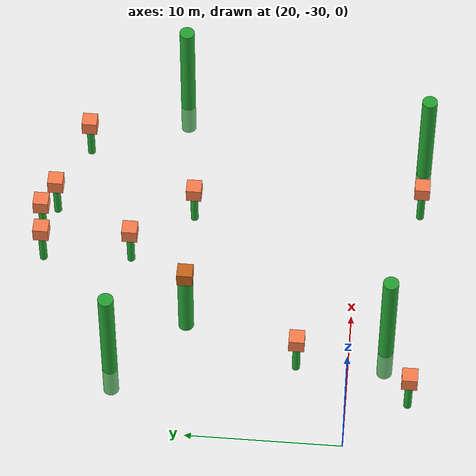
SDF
<sdf version="1.7">
 <world name="default">
  <model name="ground_plane">
   <static>1</static>
   <link name="link">
    <collision name="collision">
     <geometry><plane><normal>0 0 1</normal><size>100 100</size></plane></geometry>
     <surface>
      <contact><collide_bitmask>65535</collide_bitmask></contact>
      <friction><ode><mu>100</mu><mu2>50</mu2></ode></friction>
     </surface>
    </collision>
    <visual name="visual">
     <cast_shadows>0</cast_shadows>
     <geometry><plane><normal>0 0 1</normal><size>100 100</size></plane></geometry>
     <material>
      <script><uri>file://media/materials/scripts/gazebo.material</uri><name>Gazebo/Grey</name></script>
     </material>
    </visual>
   </link>
  </model>
  <model name="unit_cylinder_green_2_clone_clone_20">
   <link name="link">
    <inertial>
     <mass>1</mass>
     <inertia><ixx>0.145833</ixx><ixy>0</ixy><ixz>0</ixz><iyy>0.145833</iyy><iyz>0</iyz><izz>0.125</izz></inertia>
    </inertial>
    <visual name="visual">
     <geometry><cylinder><radius>0.5</radius><length>10</length></cylinder></geometry>
     <material>
      <script><name>Gazebo/Green</name><uri>file://media/materials/scripts/gazebo.material</uri></script>
      <shader type="pixel"><normal_map>__default__</normal_map></shader>
      <ambient>0 1 0.3 1</ambient>
      <diffuse>0.7 0.7 0.7 1</diffuse>
      <specular>0.01 0.01 0.01 1</specular>
      <emissive>0 0 0 1</emissive>
     </material>
    </visual>
    <collision name="collision">
     <geometry><cylinder><radius>0.5</radius><length>5</length></cylinder></geometry>
     <surface>
      <friction>
       <ode><mu>1</mu><mu2>1</mu2><fdir1>0 0 0</fdir1><slip1>0</slip1><slip2>0</slip2></ode>
       <torsional>
        <coefficient>1</coefficient>
        <patch_radius>0</patch_radius>
        <surface_radius>0</surface_radius>
        <use_patch_radius>1</use_patch_radius>
        <ode><slip>0</slip></ode>
       </torsional>
      </friction>
      <bounce><restitution_coefficient>0</restitution_coefficient><threshold>1e+06</threshold></bounce>
      <contact>
       <collide_without_contact>0</collide_without_contact>
       <collide_without_contact_bitmask>1</collide_without_contact_bitmask>
       <collide_bitmask>1</collide_bitmask>
       <ode>
        <soft_cfm>0</soft_cfm>
        <soft_erp>0.2</soft_erp>
        <kp>1e+13</kp>
        <kd>1</kd>
        <max_vel>0.01</max_vel>
        <min_depth>0</min_depth>
       </ode>
       <bullet>
        <split_impulse>1</split_impulse>
        <split_impulse_penetration_threshold>-0.01</split_impulse_penetration_threshold>
        <soft_cfm>0</soft_cfm>
        <soft_erp>0.2</soft_erp>
        <kp>1e+13</kp>
        <kd>1</kd>
       </bullet>
      </contact>
     </surface>
    </collision>
   </link>
   <static>1</static>
   <pose>24.7504 -14.7528 2.5 0 0 -0.000967</pose>
  </model>
  <model name="unit_cylinder_green_2_clone_clone_17_clone">
   <link name="link">
    <inertial>
     <mass>1</mass>
     <inertia><ixx>0.145833</ixx><ixy>0</ixy><ixz>0</ixz><iyy>0.145833</iyy><iyz>0</iyz><izz>0.125</izz></inertia>
    </inertial>
    <visual name="visual">
     <geometry><cylinder><radius>0.5</radius><length>10</length></cylinder></geometry>
     <material>
      <script><name>Gazebo/Green</name><uri>file://media/materials/scripts/gazebo.material</uri></script>
      <shader type="pixel"><normal_map>__default__</normal_map></shader>
      <ambient>0 1 0.3 1</ambient>
      <diffuse>0.7 0.7 0.7 1</diffuse>
      <specular>0.01 0.01 0.01 1</specular>
      <emissive>0 0 0 1</emissive>
     </material>
    </visual>
    <collision name="collision">
     <geometry><cylinder><radius>0.5</radius><length>5</length></cylinder></geometry>
     <surface>
      <friction>
       <ode><mu>1</mu><mu2>1</mu2><fdir1>0 0 0</fdir1><slip1>0</slip1><slip2>0</slip2></ode>
       <torsional>
        <coefficient>1</coefficient>
        <patch_radius>0</patch_radius>
        <surface_radius>0</surface_radius>
        <use_patch_radius>1</use_patch_radius>
        <ode><slip>0</slip></ode>
       </torsional>
      </friction>
      <bounce><restitution_coefficient>0</restitution_coefficient><threshold>1e+06</threshold></bounce>
      <contact>
       <collide_without_contact>0</collide_without_contact>
       <collide_without_contact_bitmask>1</collide_without_contact_bitmask>
       <collide_bitmask>1</collide_bitmask>
       <ode>
        <soft_cfm>0</soft_cfm>
        <soft_erp>0.2</soft_erp>
        <kp>1e+13</kp>
        <kd>1</kd>
        <max_vel>0.01</max_vel>
        <min_depth>0</min_depth>
       </ode>
       <bullet>
        <split_impulse>1</split_impulse>
        <split_impulse_penetration_threshold>-0.01</split_impulse_penetration_threshold>
        <soft_cfm>0</soft_cfm>
        <soft_erp>0.2</soft_erp>
        <kp>1e+13</kp>
        <kd>1</kd>
       </bullet>
      </contact>
     </surface>
    </collision>
   </link>
   <static>1</static>
   <pose>42.3584 -34.1999 2.5 1e-06 -0 -0.000967</pose>
  </model>
  <model name="unit_cylinder_green_2_clone_clone_17_clone_0">
   <link name="link">
    <inertial>
     <mass>1</mass>
     <inertia><ixx>0.145833</ixx><ixy>0</ixy><ixz>0</ixz><iyy>0.145833</iyy><iyz>0</iyz><izz>0.125</izz></inertia>
    </inertial>
    <visual name="visual">
     <geometry><cylinder><radius>0.5</radius><length>10</length></cylinder></geometry>
     <material>
      <script><name>Gazebo/Green</name><uri>file://media/materials/scripts/gazebo.material</uri></script>
      <shader type="pixel"><normal_map>__default__</normal_map></shader>
      <ambient>0 1 0.3 1</ambient>
      <diffuse>0.7 0.7 0.7 1</diffuse>
      <specular>0.01 0.01 0.01 1</specular>
      <emissive>0 0 0 1</emissive>
     </material>
    </visual>
    <collision name="collision">
     <geometry><cylinder><radius>0.5</radius><length>5</length></cylinder></geometry>
     <surface>
      <friction>
       <ode><mu>1</mu><mu2>1</mu2><fdir1>0 0 0</fdir1><slip1>0</slip1><slip2>0</slip2></ode>
       <torsional>
        <coefficient>1</coefficient>
        <patch_radius>0</patch_radius>
        <surface_radius>0</surface_radius>
        <use_patch_radius>1</use_patch_radius>
        <ode><slip>0</slip></ode>
       </torsional>
      </friction>
      <bounce><restitution_coefficient>0</restitution_coefficient><threshold>1e+06</threshold></bounce>
      <contact>
       <collide_without_contact>0</collide_without_contact>
       <collide_without_contact_bitmask>1</collide_without_contact_bitmask>
       <collide_bitmask>1</collide_bitmask>
       <ode>
        <soft_cfm>0</soft_cfm>
        <soft_erp>0.2</soft_erp>
        <kp>1e+13</kp>
        <kd>1</kd>
        <max_vel>0.01</max_vel>
        <min_depth>0</min_depth>
       </ode>
       <bullet>
        <split_impulse>1</split_impulse>
        <split_impulse_penetration_threshold>-0.01</split_impulse_penetration_threshold>
        <soft_cfm>0</soft_cfm>
        <soft_erp>0.2</soft_erp>
        <kp>1e+13</kp>
        <kd>1</kd>
       </bullet>
      </contact>
     </surface>
    </collision>
   </link>
   <static>1</static>
   <pose>47.0102 -17.7298 2.5 1e-06 -0 -0.000967</pose>
  </model>
  <model name="unit_cylinder_green_2_clone_clone_17_clone_3">
   <link name="link">
    <inertial>
     <mass>1</mass>
     <inertia><ixx>0.145833</ixx><ixy>0</ixy><ixz>0</ixz><iyy>0.145833</iyy><iyz>0</iyz><izz>0.125</izz></inertia>
    </inertial>
    <visual name="visual">
     <geometry><cylinder><radius>0.5</radius><length>10</length></cylinder></geometry>
     <material>
      <script><name>Gazebo/Green</name><uri>file://media/materials/scripts/gazebo.material</uri></script>
      <shader type="pixel"><normal_map>__default__</normal_map></shader>
      <ambient>0 1 0.3 1</ambient>
      <diffuse>0.7 0.7 0.7 1</diffuse>
      <specular>0.01 0.01 0.01 1</specular>
      <emissive>0 0 0 1</emissive>
     </material>
    </visual>
    <collision name="collision">
     <geometry><cylinder><radius>0.5</radius><length>5</length></cylinder></geometry>
     <surface>
      <friction>
       <ode><mu>1</mu><mu2>1</mu2><fdir1>0 0 0</fdir1><slip1>0</slip1><slip2>0</slip2></ode>
       <torsional>
        <coefficient>1</coefficient>
        <patch_radius>0</patch_radius>
        <surface_radius>0</surface_radius>
        <use_patch_radius>1</use_patch_radius>
        <ode><slip>0</slip></ode>
       </torsional>
      </friction>
      <bounce><restitution_coefficient>0</restitution_coefficient><threshold>1e+06</threshold></bounce>
      <contact>
       <collide_without_contact>0</collide_without_contact>
       <collide_without_contact_bitmask>1</collide_without_contact_bitmask>
       <collide_bitmask>1</collide_bitmask>
       <ode>
        <soft_cfm>0</soft_cfm>
        <soft_erp>0.2</soft_erp>
        <kp>1e+13</kp>
        <kd>1</kd>
        <max_vel>0.01</max_vel>
        <min_depth>0</min_depth>
       </ode>
       <bullet>
        <split_impulse>1</split_impulse>
        <split_impulse_penetration_threshold>-0.01</split_impulse_penetration_threshold>
        <soft_cfm>0</soft_cfm>
        <soft_erp>0.2</soft_erp>
        <kp>1e+13</kp>
        <kd>1</kd>
       </bullet>
      </contact>
     </surface>
    </collision>
   </link>
   <static>1</static>
   <pose>27.4984 -32.3703 2.5 1e-06 -0 -0.000967</pose>
  </model>
  <model name="unit_cylinder_green_2_clone_clone_3_clone_0_clone_0_clone_10">
   <link name="link">
    <inertial>
     <mass>1</mass>
     <inertia><ixx>0.145833</ixx><ixy>0</ixy><ixz>0</ixz><iyy>0.145833</iyy><iyz>0</iyz><izz>0.125</izz></inertia>
    </inertial>
    <visual name="visual">
     <geometry><cylinder><radius>0.5</radius><length>5</length></cylinder></geometry>
     <material>
      <script><name>Gazebo/Green</name><uri>file://media/materials/scripts/gazebo.material</uri></script>
      <shader type="pixel"><normal_map>__default__</normal_map></shader>
      <ambient>0 1 0.3 1</ambient>
      <diffuse>0.7 0.7 0.7 1</diffuse>
      <specular>0.01 0.01 0.01 1</specular>
      <emissive>0 0 0 1</emissive>
     </material>
    </visual>
    <collision name="collision">
     <geometry><cylinder><radius>0.5</radius><length>5</length></cylinder></geometry>
     <surface>
      <friction>
       <ode><mu>1</mu><mu2>1</mu2><fdir1>0 0 0</fdir1><slip1>0</slip1><slip2>0</slip2></ode>
       <torsional>
        <coefficient>1</coefficient>
        <patch_radius>0</patch_radius>
        <surface_radius>0</surface_radius>
        <use_patch_radius>1</use_patch_radius>
        <ode><slip>0</slip></ode>
       </torsional>
      </friction>
      <bounce><restitution_coefficient>0</restitution_coefficient><threshold>1e+06</threshold></bounce>
      <contact>
       <collide_without_contact>0</collide_without_contact>
       <collide_without_contact_bitmask>1</collide_without_contact_bitmask>
       <collide_bitmask>1</collide_bitmask>
       <ode>
        <soft_cfm>0</soft_cfm>
        <soft_erp>0.2</soft_erp>
        <kp>1e+13</kp>
        <kd>1</kd>
        <max_vel>0.01</max_vel>
        <min_depth>0</min_depth>
       </ode>
       <bullet>
        <split_impulse>1</split_impulse>
        <split_impulse_penetration_threshold>-0.01</split_impulse_penetration_threshold>
        <soft_cfm>0</soft_cfm>
        <soft_erp>0.2</soft_erp>
        <kp>1e+13</kp>
        <kd>1</kd>
       </bullet>
      </contact>
     </surface>
    </collision>
   </link>
   <link name="link_3">
    <inertial>
     <mass>1</mass>
     <inertia>
      <ixx>0.166667</ixx>
      <ixy>0</ixy>
      <ixz>0</ixz>
      <iyy>0.166667</iyy>
      <iyz>0</iyz>
      <izz>0.166667</izz>
     </inertia>
    </inertial>
    <pose>0 0 3 0 -0 0.000935</pose>
    <visual name="visual">
     <geometry><box><size>1 1 1</size></box></geometry>
     <material>
      <lighting>1</lighting>
      <script><uri>file://media/materials/scripts/gazebo.material</uri><name>Gazebo/Grey</name></script>
      <shader type="pixel"><normal_map>__default__</normal_map></shader>
      <ambient>0.8 0.4 0.1 1</ambient>
      <diffuse>0.7 0.7 0.7 1</diffuse>
      <specular>0.01 0.01 0.01 1</specular>
      <emissive>0 0 0 1</emissive>
     </material>
    </visual>
    <collision name="collision">
     <geometry><box><size>1 1 1</size></box></geometry>
     <surface>
      <friction>
       <ode><mu>1</mu><mu2>1</mu2><fdir1>0 0 0</fdir1><slip1>0</slip1><slip2>0</slip2></ode>
       <torsional>
        <coefficient>1</coefficient>
        <patch_radius>0</patch_radius>
        <surface_radius>0</surface_radius>
        <use_patch_radius>1</use_patch_radius>
        <ode><slip>0</slip></ode>
       </torsional>
      </friction>
      <bounce><restitution_coefficient>0</restitution_coefficient><threshold>1e+06</threshold></bounce>
      <contact>
       <collide_without_contact>0</collide_without_contact>
       <collide_without_contact_bitmask>1</collide_without_contact_bitmask>
       <collide_bitmask>1</collide_bitmask>
       <ode>
        <soft_cfm>0</soft_cfm>
        <soft_erp>0.2</soft_erp>
        <kp>1e+13</kp>
        <kd>1</kd>
        <max_vel>0.01</max_vel>
        <min_depth>0</min_depth>
       </ode>
       <bullet>
        <split_impulse>1</split_impulse>
        <split_impulse_penetration_threshold>-0.01</split_impulse_penetration_threshold>
        <soft_cfm>0</soft_cfm>
        <soft_erp>0.2</soft_erp>
        <kp>1e+13</kp>
        <kd>1</kd>
       </bullet>
      </contact>
     </surface>
    </collision>
   </link>
   <static>1</static>
   <pose>28.5058 -19.3294 2.49999 0 0 -0.000935</pose>
  </model>
  <model name="unit_cylinder_green_2_clone_clone_3_clone_0_clone_0_clone_60">
   <link name="link">
    <inertial>
     <mass>1</mass>
     <inertia><ixx>0.145833</ixx><ixy>0</ixy><ixz>0</ixz><iyy>0.145833</iyy><iyz>0</iyz><izz>0.125</izz></inertia>
    </inertial>
    <pose>0 0 -1.25 0 -0 0</pose>
    <visual name="visual">
     <geometry><cylinder><radius>0.25</radius><length>2.5</length></cylinder></geometry>
     <material>
      <script><name>Gazebo/Green</name><uri>file://media/materials/scripts/gazebo.material</uri></script>
      <shader type="pixel"><normal_map>__default__</normal_map></shader>
      <ambient>0 1 0.3 1</ambient>
      <diffuse>0.7 0.7 0.7 1</diffuse>
      <specular>0.01 0.01 0.01 1</specular>
      <emissive>0 0 0 1</emissive>
     </material>
    </visual>
    <collision name="collision">
     <geometry><cylinder><radius>0.5</radius><length>5</length></cylinder></geometry>
     <surface>
      <friction>
       <ode><mu>1</mu><mu2>1</mu2><fdir1>0 0 0</fdir1><slip1>0</slip1><slip2>0</slip2></ode>
       <torsional>
        <coefficient>1</coefficient>
        <patch_radius>0</patch_radius>
        <surface_radius>0</surface_radius>
        <use_patch_radius>1</use_patch_radius>
        <ode><slip>0</slip></ode>
       </torsional>
      </friction>
      <bounce><restitution_coefficient>0</restitution_coefficient><threshold>1e+06</threshold></bounce>
      <contact>
       <collide_without_contact>0</collide_without_contact>
       <collide_without_contact_bitmask>1</collide_without_contact_bitmask>
       <collide_bitmask>1</collide_bitmask>
       <ode>
        <soft_cfm>0</soft_cfm>
        <soft_erp>0.2</soft_erp>
        <kp>1e+13</kp>
        <kd>1</kd>
        <max_vel>0.01</max_vel>
        <min_depth>0</min_depth>
       </ode>
       <bullet>
        <split_impulse>1</split_impulse>
        <split_impulse_penetration_threshold>-0.01</split_impulse_penetration_threshold>
        <soft_cfm>0</soft_cfm>
        <soft_erp>0.2</soft_erp>
        <kp>1e+13</kp>
        <kd>1</kd>
       </bullet>
      </contact>
     </surface>
    </collision>
   </link>
   <link name="link_3">
    <inertial>
     <mass>1</mass>
     <inertia>
      <ixx>0.166667</ixx>
      <ixy>0</ixy>
      <ixz>0</ixz>
      <iyy>0.166667</iyy>
      <iyz>0</iyz>
      <izz>0.166667</izz>
     </inertia>
    </inertial>
    <pose>0 0 0.5 0 -0 0.000935</pose>
    <visual name="visual">
     <geometry><box><size>1 1 1</size></box></geometry>
     <material>
      <lighting>1</lighting>
      <script><uri>file://media/materials/scripts/gazebo.material</uri><name>Gazebo/Grey</name></script>
      <shader type="pixel"><normal_map>__default__</normal_map></shader>
      <ambient>1 0.5 0.3 1</ambient>
      <diffuse>0.7 0.7 0.7 1</diffuse>
      <specular>0.01 0.01 0.01 1</specular>
      <emissive>0 0 0 1</emissive>
     </material>
    </visual>
    <collision name="collision">
     <geometry><box><size>1 1 1</size></box></geometry>
     <surface>
      <friction>
       <ode><mu>1</mu><mu2>1</mu2><fdir1>0 0 0</fdir1><slip1>0</slip1><slip2>0</slip2></ode>
       <torsional>
        <coefficient>1</coefficient>
        <patch_radius>0</patch_radius>
        <surface_radius>0</surface_radius>
        <use_patch_radius>1</use_patch_radius>
        <ode><slip>0</slip></ode>
       </torsional>
      </friction>
      <bounce><restitution_coefficient>0</restitution_coefficient><threshold>1e+06</threshold></bounce>
      <contact>
       <collide_without_contact>0</collide_without_contact>
       <collide_without_contact_bitmask>1</collide_without_contact_bitmask>
       <collide_bitmask>1</collide_bitmask>
       <ode>
        <soft_cfm>0</soft_cfm>
        <soft_erp>0.2</soft_erp>
        <kp>1e+13</kp>
        <kd>1</kd>
        <max_vel>0.01</max_vel>
        <min_depth>0</min_depth>
       </ode>
       <bullet>
        <split_impulse>1</split_impulse>
        <split_impulse_penetration_threshold>-0.01</split_impulse_penetration_threshold>
        <soft_cfm>0</soft_cfm>
        <soft_erp>0.2</soft_erp>
        <kp>1e+13</kp>
        <kd>1</kd>
       </bullet>
      </contact>
     </surface>
    </collision>
   </link>
   <static>1</static>
   <pose>33.5032 -15.1973 2.49999 0 0 -0.000935</pose>
  </model>
  <model name="unit_cylinder_green_2_clone_clone_3_clone_0_clone_0_clone_61">
   <link name="link">
    <inertial>
     <mass>1</mass>
     <inertia><ixx>0.145833</ixx><ixy>0</ixy><ixz>0</ixz><iyy>0.145833</iyy><iyz>0</iyz><izz>0.125</izz></inertia>
    </inertial>
    <pose>0 0 -1.25 0 -0 0</pose>
    <visual name="visual">
     <geometry><cylinder><radius>0.25</radius><length>2.5</length></cylinder></geometry>
     <material>
      <script><name>Gazebo/Green</name><uri>file://media/materials/scripts/gazebo.material</uri></script>
      <shader type="pixel"><normal_map>__default__</normal_map></shader>
      <ambient>0 1 0.3 1</ambient>
      <diffuse>0.7 0.7 0.7 1</diffuse>
      <specular>0.01 0.01 0.01 1</specular>
      <emissive>0 0 0 1</emissive>
     </material>
    </visual>
    <collision name="collision">
     <geometry><cylinder><radius>0.5</radius><length>5</length></cylinder></geometry>
     <surface>
      <friction>
       <ode><mu>1</mu><mu2>1</mu2><fdir1>0 0 0</fdir1><slip1>0</slip1><slip2>0</slip2></ode>
       <torsional>
        <coefficient>1</coefficient>
        <patch_radius>0</patch_radius>
        <surface_radius>0</surface_radius>
        <use_patch_radius>1</use_patch_radius>
        <ode><slip>0</slip></ode>
       </torsional>
      </friction>
      <bounce><restitution_coefficient>0</restitution_coefficient><threshold>1e+06</threshold></bounce>
      <contact>
       <collide_without_contact>0</collide_without_contact>
       <collide_without_contact_bitmask>1</collide_without_contact_bitmask>
       <collide_bitmask>1</collide_bitmask>
       <ode>
        <soft_cfm>0</soft_cfm>
        <soft_erp>0.2</soft_erp>
        <kp>1e+13</kp>
        <kd>1</kd>
        <max_vel>0.01</max_vel>
        <min_depth>0</min_depth>
       </ode>
       <bullet>
        <split_impulse>1</split_impulse>
        <split_impulse_penetration_threshold>-0.01</split_impulse_penetration_threshold>
        <soft_cfm>0</soft_cfm>
        <soft_erp>0.2</soft_erp>
        <kp>1e+13</kp>
        <kd>1</kd>
       </bullet>
      </contact>
     </surface>
    </collision>
   </link>
   <link name="link_3">
    <inertial>
     <mass>1</mass>
     <inertia>
      <ixx>0.166667</ixx>
      <ixy>0</ixy>
      <ixz>0</ixz>
      <iyy>0.166667</iyy>
      <iyz>0</iyz>
      <izz>0.166667</izz>
     </inertia>
    </inertial>
    <pose>0 0 0.5 0 -0 0.000935</pose>
    <visual name="visual">
     <geometry><box><size>1 1 1</size></box></geometry>
     <material>
      <lighting>1</lighting>
      <script><uri>file://media/materials/scripts/gazebo.material</uri><name>Gazebo/Grey</name></script>
      <shader type="pixel"><normal_map>__default__</normal_map></shader>
      <ambient>1 0.5 0.3 1</ambient>
      <diffuse>0.7 0.7 0.7 1</diffuse>
      <specular>0.01 0.01 0.01 1</specular>
      <emissive>0 0 0 1</emissive>
     </material>
    </visual>
    <collision name="collision">
     <geometry><box><size>1 1 1</size></box></geometry>
     <surface>
      <friction>
       <ode><mu>1</mu><mu2>1</mu2><fdir1>0 0 0</fdir1><slip1>0</slip1><slip2>0</slip2></ode>
       <torsional>
        <coefficient>1</coefficient>
        <patch_radius>0</patch_radius>
        <surface_radius>0</surface_radius>
        <use_patch_radius>1</use_patch_radius>
        <ode><slip>0</slip></ode>
       </torsional>
      </friction>
      <bounce><restitution_coefficient>0</restitution_coefficient><threshold>1e+06</threshold></bounce>
      <contact>
       <collide_without_contact>0</collide_without_contact>
       <collide_without_contact_bitmask>1</collide_without_contact_bitmask>
       <collide_bitmask>1</collide_bitmask>
       <ode>
        <soft_cfm>0</soft_cfm>
        <soft_erp>0.2</soft_erp>
        <kp>1e+13</kp>
        <kd>1</kd>
        <max_vel>0.01</max_vel>
        <min_depth>0</min_depth>
       </ode>
       <bullet>
        <split_impulse>1</split_impulse>
        <split_impulse_penetration_threshold>-0.01</split_impulse_penetration_threshold>
        <soft_cfm>0</soft_cfm>
        <soft_erp>0.2</soft_erp>
        <kp>1e+13</kp>
        <kd>1</kd>
       </bullet>
      </contact>
     </surface>
    </collision>
   </link>
   <static>1</static>
   <pose>35.3508 -9.12911 2.49999 0 0 -0.000935</pose>
  </model>
  <model name="unit_cylinder_green_2_clone_clone_3_clone_0_clone_0_clone_68">
   <link name="link">
    <inertial>
     <mass>1</mass>
     <inertia><ixx>0.145833</ixx><ixy>0</ixy><ixz>0</ixz><iyy>0.145833</iyy><iyz>0</iyz><izz>0.125</izz></inertia>
    </inertial>
    <pose>0 0 -1.25 0 -0 0</pose>
    <visual name="visual">
     <geometry><cylinder><radius>0.25</radius><length>2.5</length></cylinder></geometry>
     <material>
      <script><name>Gazebo/Green</name><uri>file://media/materials/scripts/gazebo.material</uri></script>
      <shader type="pixel"><normal_map>__default__</normal_map></shader>
      <ambient>0 1 0.3 1</ambient>
      <diffuse>0.7 0.7 0.7 1</diffuse>
      <specular>0.01 0.01 0.01 1</specular>
      <emissive>0 0 0 1</emissive>
     </material>
    </visual>
    <collision name="collision">
     <geometry><cylinder><radius>0.5</radius><length>5</length></cylinder></geometry>
     <surface>
      <friction>
       <ode><mu>1</mu><mu2>1</mu2><fdir1>0 0 0</fdir1><slip1>0</slip1><slip2>0</slip2></ode>
       <torsional>
        <coefficient>1</coefficient>
        <patch_radius>0</patch_radius>
        <surface_radius>0</surface_radius>
        <use_patch_radius>1</use_patch_radius>
        <ode><slip>0</slip></ode>
       </torsional>
      </friction>
      <bounce><restitution_coefficient>0</restitution_coefficient><threshold>1e+06</threshold></bounce>
      <contact>
       <collide_without_contact>0</collide_without_contact>
       <collide_without_contact_bitmask>1</collide_without_contact_bitmask>
       <collide_bitmask>1</collide_bitmask>
       <ode>
        <soft_cfm>0</soft_cfm>
        <soft_erp>0.2</soft_erp>
        <kp>1e+13</kp>
        <kd>1</kd>
        <max_vel>0.01</max_vel>
        <min_depth>0</min_depth>
       </ode>
       <bullet>
        <split_impulse>1</split_impulse>
        <split_impulse_penetration_threshold>-0.01</split_impulse_penetration_threshold>
        <soft_cfm>0</soft_cfm>
        <soft_erp>0.2</soft_erp>
        <kp>1e+13</kp>
        <kd>1</kd>
       </bullet>
      </contact>
     </surface>
    </collision>
   </link>
   <link name="link_3">
    <inertial>
     <mass>1</mass>
     <inertia>
      <ixx>0.166667</ixx>
      <ixy>0</ixy>
      <ixz>0</ixz>
      <iyy>0.166667</iyy>
      <iyz>0</iyz>
      <izz>0.166667</izz>
     </inertia>
    </inertial>
    <pose>0 0 0.5 0 -0 0.000935</pose>
    <visual name="visual">
     <geometry><box><size>1 1 1</size></box></geometry>
     <material>
      <lighting>1</lighting>
      <script><uri>file://media/materials/scripts/gazebo.material</uri><name>Gazebo/Grey</name></script>
      <shader type="pixel"><normal_map>__default__</normal_map></shader>
      <ambient>1 0.5 0.3 1</ambient>
      <diffuse>0.7 0.7 0.7 1</diffuse>
      <specular>0.01 0.01 0.01 1</specular>
      <emissive>0 0 0 1</emissive>
     </material>
    </visual>
    <collision name="collision">
     <geometry><box><size>1 1 1</size></box></geometry>
     <surface>
      <friction>
       <ode><mu>1</mu><mu2>1</mu2><fdir1>0 0 0</fdir1><slip1>0</slip1><slip2>0</slip2></ode>
       <torsional>
        <coefficient>1</coefficient>
        <patch_radius>0</patch_radius>
        <surface_radius>0</surface_radius>
        <use_patch_radius>1</use_patch_radius>
        <ode><slip>0</slip></ode>
       </torsional>
      </friction>
      <bounce><restitution_coefficient>0</restitution_coefficient><threshold>1e+06</threshold></bounce>
      <contact>
       <collide_without_contact>0</collide_without_contact>
       <collide_without_contact_bitmask>1</collide_without_contact_bitmask>
       <collide_bitmask>1</collide_bitmask>
       <ode>
        <soft_cfm>0</soft_cfm>
        <soft_erp>0.2</soft_erp>
        <kp>1e+13</kp>
        <kd>1</kd>
        <max_vel>0.01</max_vel>
        <min_depth>0</min_depth>
       </ode>
       <bullet>
        <split_impulse>1</split_impulse>
        <split_impulse_penetration_threshold>-0.01</split_impulse_penetration_threshold>
        <soft_cfm>0</soft_cfm>
        <soft_erp>0.2</soft_erp>
        <kp>1e+13</kp>
        <kd>1</kd>
       </bullet>
      </contact>
     </surface>
    </collision>
   </link>
   <static>1</static>
   <pose>42.2978 -11.5485 2.49999 0 0 -0.000935</pose>
  </model>
  <model name="unit_cylinder_green_2_clone_clone_3_clone_0_clone_0_clone_69">
   <link name="link">
    <inertial>
     <mass>1</mass>
     <inertia><ixx>0.145833</ixx><ixy>0</ixy><ixz>0</ixz><iyy>0.145833</iyy><iyz>0</iyz><izz>0.125</izz></inertia>
    </inertial>
    <pose>0 0 -1.25 0 -0 0</pose>
    <visual name="visual">
     <geometry><cylinder><radius>0.25</radius><length>2.5</length></cylinder></geometry>
     <material>
      <script><name>Gazebo/Green</name><uri>file://media/materials/scripts/gazebo.material</uri></script>
      <shader type="pixel"><normal_map>__default__</normal_map></shader>
      <ambient>0 1 0.3 1</ambient>
      <diffuse>0.7 0.7 0.7 1</diffuse>
      <specular>0.01 0.01 0.01 1</specular>
      <emissive>0 0 0 1</emissive>
     </material>
    </visual>
    <collision name="collision">
     <geometry><cylinder><radius>0.5</radius><length>5</length></cylinder></geometry>
     <surface>
      <friction>
       <ode><mu>1</mu><mu2>1</mu2><fdir1>0 0 0</fdir1><slip1>0</slip1><slip2>0</slip2></ode>
       <torsional>
        <coefficient>1</coefficient>
        <patch_radius>0</patch_radius>
        <surface_radius>0</surface_radius>
        <use_patch_radius>1</use_patch_radius>
        <ode><slip>0</slip></ode>
       </torsional>
      </friction>
      <bounce><restitution_coefficient>0</restitution_coefficient><threshold>1e+06</threshold></bounce>
      <contact>
       <collide_without_contact>0</collide_without_contact>
       <collide_without_contact_bitmask>1</collide_without_contact_bitmask>
       <collide_bitmask>1</collide_bitmask>
       <ode>
        <soft_cfm>0</soft_cfm>
        <soft_erp>0.2</soft_erp>
        <kp>1e+13</kp>
        <kd>1</kd>
        <max_vel>0.01</max_vel>
        <min_depth>0</min_depth>
       </ode>
       <bullet>
        <split_impulse>1</split_impulse>
        <split_impulse_penetration_threshold>-0.01</split_impulse_penetration_threshold>
        <soft_cfm>0</soft_cfm>
        <soft_erp>0.2</soft_erp>
        <kp>1e+13</kp>
        <kd>1</kd>
       </bullet>
      </contact>
     </surface>
    </collision>
   </link>
   <link name="link_3">
    <inertial>
     <mass>1</mass>
     <inertia>
      <ixx>0.166667</ixx>
      <ixy>0</ixy>
      <ixz>0</ixz>
      <iyy>0.166667</iyy>
      <iyz>0</iyz>
      <izz>0.166667</izz>
     </inertia>
    </inertial>
    <pose>0 0 0.5 0 -0 0.000935</pose>
    <visual name="visual">
     <geometry><box><size>1 1 1</size></box></geometry>
     <material>
      <lighting>1</lighting>
      <script><uri>file://media/materials/scripts/gazebo.material</uri><name>Gazebo/Grey</name></script>
      <shader type="pixel"><normal_map>__default__</normal_map></shader>
      <ambient>1 0.5 0.3 1</ambient>
      <diffuse>0.7 0.7 0.7 1</diffuse>
      <specular>0.01 0.01 0.01 1</specular>
      <emissive>0 0 0 1</emissive>
     </material>
    </visual>
    <collision name="collision">
     <geometry><box><size>1 1 1</size></box></geometry>
     <surface>
      <friction>
       <ode><mu>1</mu><mu2>1</mu2><fdir1>0 0 0</fdir1><slip1>0</slip1><slip2>0</slip2></ode>
       <torsional>
        <coefficient>1</coefficient>
        <patch_radius>0</patch_radius>
        <surface_radius>0</surface_radius>
        <use_patch_radius>1</use_patch_radius>
        <ode><slip>0</slip></ode>
       </torsional>
      </friction>
      <bounce><restitution_coefficient>0</restitution_coefficient><threshold>1e+06</threshold></bounce>
      <contact>
       <collide_without_contact>0</collide_without_contact>
       <collide_without_contact_bitmask>1</collide_without_contact_bitmask>
       <collide_bitmask>1</collide_bitmask>
       <ode>
        <soft_cfm>0</soft_cfm>
        <soft_erp>0.2</soft_erp>
        <kp>1e+13</kp>
        <kd>1</kd>
        <max_vel>0.01</max_vel>
        <min_depth>0</min_depth>
       </ode>
       <bullet>
        <split_impulse>1</split_impulse>
        <split_impulse_penetration_threshold>-0.01</split_impulse_penetration_threshold>
        <soft_cfm>0</soft_cfm>
        <soft_erp>0.2</soft_erp>
        <kp>1e+13</kp>
        <kd>1</kd>
       </bullet>
      </contact>
     </surface>
    </collision>
   </link>
   <static>1</static>
   <pose>33.1425 -9.40437 2.49999 0 0 -0.000935</pose>
  </model>
  <model name="unit_cylinder_green_2_clone_clone_3_clone_0_clone_0_clone_70">
   <link name="link">
    <inertial>
     <mass>1</mass>
     <inertia><ixx>0.145833</ixx><ixy>0</ixy><ixz>0</ixz><iyy>0.145833</iyy><iyz>0</iyz><izz>0.125</izz></inertia>
    </inertial>
    <pose>0 0 -1.25 0 -0 0</pose>
    <visual name="visual">
     <geometry><cylinder><radius>0.25</radius><length>2.5</length></cylinder></geometry>
     <material>
      <script><name>Gazebo/Green</name><uri>file://media/materials/scripts/gazebo.material</uri></script>
      <shader type="pixel"><normal_map>__default__</normal_map></shader>
      <ambient>0 1 0.3 1</ambient>
      <diffuse>0.7 0.7 0.7 1</diffuse>
      <specular>0.01 0.01 0.01 1</specular>
      <emissive>0 0 0 1</emissive>
     </material>
    </visual>
    <collision name="collision">
     <geometry><cylinder><radius>0.5</radius><length>5</length></cylinder></geometry>
     <surface>
      <friction>
       <ode><mu>1</mu><mu2>1</mu2><fdir1>0 0 0</fdir1><slip1>0</slip1><slip2>0</slip2></ode>
       <torsional>
        <coefficient>1</coefficient>
        <patch_radius>0</patch_radius>
        <surface_radius>0</surface_radius>
        <use_patch_radius>1</use_patch_radius>
        <ode><slip>0</slip></ode>
       </torsional>
      </friction>
      <bounce><restitution_coefficient>0</restitution_coefficient><threshold>1e+06</threshold></bounce>
      <contact>
       <collide_without_contact>0</collide_without_contact>
       <collide_without_contact_bitmask>1</collide_without_contact_bitmask>
       <collide_bitmask>1</collide_bitmask>
       <ode>
        <soft_cfm>0</soft_cfm>
        <soft_erp>0.2</soft_erp>
        <kp>1e+13</kp>
        <kd>1</kd>
        <max_vel>0.01</max_vel>
        <min_depth>0</min_depth>
       </ode>
       <bullet>
        <split_impulse>1</split_impulse>
        <split_impulse_penetration_threshold>-0.01</split_impulse_penetration_threshold>
        <soft_cfm>0</soft_cfm>
        <soft_erp>0.2</soft_erp>
        <kp>1e+13</kp>
        <kd>1</kd>
       </bullet>
      </contact>
     </surface>
    </collision>
   </link>
   <link name="link_3">
    <inertial>
     <mass>1</mass>
     <inertia>
      <ixx>0.166667</ixx>
      <ixy>0</ixy>
      <ixz>0</ixz>
      <iyy>0.166667</iyy>
      <iyz>0</iyz>
      <izz>0.166667</izz>
     </inertia>
    </inertial>
    <pose>0 0 0.5 0 -0 0.000935</pose>
    <visual name="visual">
     <geometry><box><size>1 1 1</size></box></geometry>
     <material>
      <lighting>1</lighting>
      <script><uri>file://media/materials/scripts/gazebo.material</uri><name>Gazebo/Grey</name></script>
      <shader type="pixel"><normal_map>__default__</normal_map></shader>
      <ambient>1 0.5 0.3 1</ambient>
      <diffuse>0.7 0.7 0.7 1</diffuse>
      <specular>0.01 0.01 0.01 1</specular>
      <emissive>0 0 0 1</emissive>
     </material>
    </visual>
    <collision name="collision">
     <geometry><box><size>1 1 1</size></box></geometry>
     <surface>
      <friction>
       <ode><mu>1</mu><mu2>1</mu2><fdir1>0 0 0</fdir1><slip1>0</slip1><slip2>0</slip2></ode>
       <torsional>
        <coefficient>1</coefficient>
        <patch_radius>0</patch_radius>
        <surface_radius>0</surface_radius>
        <use_patch_radius>1</use_patch_radius>
        <ode><slip>0</slip></ode>
       </torsional>
      </friction>
      <bounce><restitution_coefficient>0</restitution_coefficient><threshold>1e+06</threshold></bounce>
      <contact>
       <collide_without_contact>0</collide_without_contact>
       <collide_without_contact_bitmask>1</collide_without_contact_bitmask>
       <collide_bitmask>1</collide_bitmask>
       <ode>
        <soft_cfm>0</soft_cfm>
        <soft_erp>0.2</soft_erp>
        <kp>1e+13</kp>
        <kd>1</kd>
        <max_vel>0.01</max_vel>
        <min_depth>0</min_depth>
       </ode>
       <bullet>
        <split_impulse>1</split_impulse>
        <split_impulse_penetration_threshold>-0.01</split_impulse_penetration_threshold>
        <soft_cfm>0</soft_cfm>
        <soft_erp>0.2</soft_erp>
        <kp>1e+13</kp>
        <kd>1</kd>
       </bullet>
      </contact>
     </surface>
    </collision>
   </link>
   <static>1</static>
   <pose>37.1333 -9.87377 2.49999 0 0 -0.000935</pose>
  </model>
  <model name="unit_cylinder_green_2_clone_clone_3_clone_0_clone_0_clone_71">
   <link name="link">
    <inertial>
     <mass>1</mass>
     <inertia><ixx>0.145833</ixx><ixy>0</ixy><ixz>0</ixz><iyy>0.145833</iyy><iyz>0</iyz><izz>0.125</izz></inertia>
    </inertial>
    <pose>0 0 -1.25 0 -0 0</pose>
    <visual name="visual">
     <geometry><cylinder><radius>0.25</radius><length>2.5</length></cylinder></geometry>
     <material>
      <script><name>Gazebo/Green</name><uri>file://media/materials/scripts/gazebo.material</uri></script>
      <shader type="pixel"><normal_map>__default__</normal_map></shader>
      <ambient>0 1 0.3 1</ambient>
      <diffuse>0.7 0.7 0.7 1</diffuse>
      <specular>0.01 0.01 0.01 1</specular>
      <emissive>0 0 0 1</emissive>
     </material>
    </visual>
    <collision name="collision">
     <geometry><cylinder><radius>0.5</radius><length>5</length></cylinder></geometry>
     <surface>
      <friction>
       <ode><mu>1</mu><mu2>1</mu2><fdir1>0 0 0</fdir1><slip1>0</slip1><slip2>0</slip2></ode>
       <torsional>
        <coefficient>1</coefficient>
        <patch_radius>0</patch_radius>
        <surface_radius>0</surface_radius>
        <use_patch_radius>1</use_patch_radius>
        <ode><slip>0</slip></ode>
       </torsional>
      </friction>
      <bounce><restitution_coefficient>0</restitution_coefficient><threshold>1e+06</threshold></bounce>
      <contact>
       <collide_without_contact>0</collide_without_contact>
       <collide_without_contact_bitmask>1</collide_without_contact_bitmask>
       <collide_bitmask>1</collide_bitmask>
       <ode>
        <soft_cfm>0</soft_cfm>
        <soft_erp>0.2</soft_erp>
        <kp>1e+13</kp>
        <kd>1</kd>
        <max_vel>0.01</max_vel>
        <min_depth>0</min_depth>
       </ode>
       <bullet>
        <split_impulse>1</split_impulse>
        <split_impulse_penetration_threshold>-0.01</split_impulse_penetration_threshold>
        <soft_cfm>0</soft_cfm>
        <soft_erp>0.2</soft_erp>
        <kp>1e+13</kp>
        <kd>1</kd>
       </bullet>
      </contact>
     </surface>
    </collision>
   </link>
   <link name="link_3">
    <inertial>
     <mass>1</mass>
     <inertia>
      <ixx>0.166667</ixx>
      <ixy>0</ixy>
      <ixz>0</ixz>
      <iyy>0.166667</iyy>
      <iyz>0</iyz>
      <izz>0.166667</izz>
     </inertia>
    </inertial>
    <pose>0 0 0.5 0 -0 0.000935</pose>
    <visual name="visual">
     <geometry><box><size>1 1 1</size></box></geometry>
     <material>
      <lighting>1</lighting>
      <script><uri>file://media/materials/scripts/gazebo.material</uri><name>Gazebo/Grey</name></script>
      <shader type="pixel"><normal_map>__default__</normal_map></shader>
      <ambient>1 0.5 0.3 1</ambient>
      <diffuse>0.7 0.7 0.7 1</diffuse>
      <specular>0.01 0.01 0.01 1</specular>
      <emissive>0 0 0 1</emissive>
     </material>
    </visual>
    <collision name="collision">
     <geometry><box><size>1 1 1</size></box></geometry>
     <surface>
      <friction>
       <ode><mu>1</mu><mu2>1</mu2><fdir1>0 0 0</fdir1><slip1>0</slip1><slip2>0</slip2></ode>
       <torsional>
        <coefficient>1</coefficient>
        <patch_radius>0</patch_radius>
        <surface_radius>0</surface_radius>
        <use_patch_radius>1</use_patch_radius>
        <ode><slip>0</slip></ode>
       </torsional>
      </friction>
      <bounce><restitution_coefficient>0</restitution_coefficient><threshold>1e+06</threshold></bounce>
      <contact>
       <collide_without_contact>0</collide_without_contact>
       <collide_without_contact_bitmask>1</collide_without_contact_bitmask>
       <collide_bitmask>1</collide_bitmask>
       <ode>
        <soft_cfm>0</soft_cfm>
        <soft_erp>0.2</soft_erp>
        <kp>1e+13</kp>
        <kd>1</kd>
        <max_vel>0.01</max_vel>
        <min_depth>0</min_depth>
       </ode>
       <bullet>
        <split_impulse>1</split_impulse>
        <split_impulse_penetration_threshold>-0.01</split_impulse_penetration_threshold>
        <soft_cfm>0</soft_cfm>
        <soft_erp>0.2</soft_erp>
        <kp>1e+13</kp>
        <kd>1</kd>
       </bullet>
      </contact>
     </surface>
    </collision>
   </link>
   <static>1</static>
   <pose>37.2171 -19.0694 2.49999 0 0 -0.000935</pose>
  </model>
  <model name="unit_cylinder_green_2_clone_clone_3_clone_0_clone_0_clone_75">
   <link name="link">
    <inertial>
     <mass>1</mass>
     <inertia><ixx>0.145833</ixx><ixy>0</ixy><ixz>0</ixz><iyy>0.145833</iyy><iyz>0</iyz><izz>0.125</izz></inertia>
    </inertial>
    <pose>0 0 -1.25 0 -0 0</pose>
    <visual name="visual">
     <geometry><cylinder><radius>0.25</radius><length>2.5</length></cylinder></geometry>
     <material>
      <script><name>Gazebo/Green</name><uri>file://media/materials/scripts/gazebo.material</uri></script>
      <shader type="pixel"><normal_map>__default__</normal_map></shader>
      <ambient>0 1 0.3 1</ambient>
      <diffuse>0.7 0.7 0.7 1</diffuse>
      <specular>0.01 0.01 0.01 1</specular>
      <emissive>0 0 0 1</emissive>
     </material>
    </visual>
    <collision name="collision">
     <geometry><cylinder><radius>0.5</radius><length>5</length></cylinder></geometry>
     <surface>
      <friction>
       <ode><mu>1</mu><mu2>1</mu2><fdir1>0 0 0</fdir1><slip1>0</slip1><slip2>0</slip2></ode>
       <torsional>
        <coefficient>1</coefficient>
        <patch_radius>0</patch_radius>
        <surface_radius>0</surface_radius>
        <use_patch_radius>1</use_patch_radius>
        <ode><slip>0</slip></ode>
       </torsional>
      </friction>
      <bounce><restitution_coefficient>0</restitution_coefficient><threshold>1e+06</threshold></bounce>
      <contact>
       <collide_without_contact>0</collide_without_contact>
       <collide_without_contact_bitmask>1</collide_without_contact_bitmask>
       <collide_bitmask>1</collide_bitmask>
       <ode>
        <soft_cfm>0</soft_cfm>
        <soft_erp>0.2</soft_erp>
        <kp>1e+13</kp>
        <kd>1</kd>
        <max_vel>0.01</max_vel>
        <min_depth>0</min_depth>
       </ode>
       <bullet>
        <split_impulse>1</split_impulse>
        <split_impulse_penetration_threshold>-0.01</split_impulse_penetration_threshold>
        <soft_cfm>0</soft_cfm>
        <soft_erp>0.2</soft_erp>
        <kp>1e+13</kp>
        <kd>1</kd>
       </bullet>
      </contact>
     </surface>
    </collision>
   </link>
   <link name="link_3">
    <inertial>
     <mass>1</mass>
     <inertia>
      <ixx>0.166667</ixx>
      <ixy>0</ixy>
      <ixz>0</ixz>
      <iyy>0.166667</iyy>
      <iyz>0</iyz>
      <izz>0.166667</izz>
     </inertia>
    </inertial>
    <pose>0 0 0.5 0 -0 0.000935</pose>
    <visual name="visual">
     <geometry><box><size>1 1 1</size></box></geometry>
     <material>
      <lighting>1</lighting>
      <script><uri>file://media/materials/scripts/gazebo.material</uri><name>Gazebo/Grey</name></script>
      <shader type="pixel"><normal_map>__default__</normal_map></shader>
      <ambient>1 0.5 0.3 1</ambient>
      <diffuse>0.7 0.7 0.7 1</diffuse>
      <specular>0.01 0.01 0.01 1</specular>
      <emissive>0 0 0 1</emissive>
     </material>
    </visual>
    <collision name="collision">
     <geometry><box><size>1 1 1</size></box></geometry>
     <surface>
      <friction>
       <ode><mu>1</mu><mu2>1</mu2><fdir1>0 0 0</fdir1><slip1>0</slip1><slip2>0</slip2></ode>
       <torsional>
        <coefficient>1</coefficient>
        <patch_radius>0</patch_radius>
        <surface_radius>0</surface_radius>
        <use_patch_radius>1</use_patch_radius>
        <ode><slip>0</slip></ode>
       </torsional>
      </friction>
      <bounce><restitution_coefficient>0</restitution_coefficient><threshold>1e+06</threshold></bounce>
      <contact>
       <collide_without_contact>0</collide_without_contact>
       <collide_without_contact_bitmask>1</collide_without_contact_bitmask>
       <collide_bitmask>1</collide_bitmask>
       <ode>
        <soft_cfm>0</soft_cfm>
        <soft_erp>0.2</soft_erp>
        <kp>1e+13</kp>
        <kd>1</kd>
        <max_vel>0.01</max_vel>
        <min_depth>0</min_depth>
       </ode>
       <bullet>
        <split_impulse>1</split_impulse>
        <split_impulse_penetration_threshold>-0.01</split_impulse_penetration_threshold>
        <soft_cfm>0</soft_cfm>
        <soft_erp>0.2</soft_erp>
        <kp>1e+13</kp>
        <kd>1</kd>
       </bullet>
      </contact>
     </surface>
    </collision>
   </link>
   <static>1</static>
   <pose>23.438 -33.9422 2.49999 0 0 -0.000935</pose>
  </model>
  <model name="unit_cylinder_green_2_clone_clone_3_clone_0_clone_0_clone_76">
   <link name="link">
    <inertial>
     <mass>1</mass>
     <inertia><ixx>0.145833</ixx><ixy>0</ixy><ixz>0</ixz><iyy>0.145833</iyy><iyz>0</iyz><izz>0.125</izz></inertia>
    </inertial>
    <pose>0 0 -1.25 0 -0 0</pose>
    <visual name="visual">
     <geometry><cylinder><radius>0.25</radius><length>2.5</length></cylinder></geometry>
     <material>
      <script><name>Gazebo/Green</name><uri>file://media/materials/scripts/gazebo.material</uri></script>
      <shader type="pixel"><normal_map>__default__</normal_map></shader>
      <ambient>0 1 0.3 1</ambient>
      <diffuse>0.7 0.7 0.7 1</diffuse>
      <specular>0.01 0.01 0.01 1</specular>
      <emissive>0 0 0 1</emissive>
     </material>
    </visual>
    <collision name="collision">
     <geometry><cylinder><radius>0.5</radius><length>5</length></cylinder></geometry>
     <surface>
      <friction>
       <ode><mu>1</mu><mu2>1</mu2><fdir1>0 0 0</fdir1><slip1>0</slip1><slip2>0</slip2></ode>
       <torsional>
        <coefficient>1</coefficient>
        <patch_radius>0</patch_radius>
        <surface_radius>0</surface_radius>
        <use_patch_radius>1</use_patch_radius>
        <ode><slip>0</slip></ode>
       </torsional>
      </friction>
      <bounce><restitution_coefficient>0</restitution_coefficient><threshold>1e+06</threshold></bounce>
      <contact>
       <collide_without_contact>0</collide_without_contact>
       <collide_without_contact_bitmask>1</collide_without_contact_bitmask>
       <collide_bitmask>1</collide_bitmask>
       <ode>
        <soft_cfm>0</soft_cfm>
        <soft_erp>0.2</soft_erp>
        <kp>1e+13</kp>
        <kd>1</kd>
        <max_vel>0.01</max_vel>
        <min_depth>0</min_depth>
       </ode>
       <bullet>
        <split_impulse>1</split_impulse>
        <split_impulse_penetration_threshold>-0.01</split_impulse_penetration_threshold>
        <soft_cfm>0</soft_cfm>
        <soft_erp>0.2</soft_erp>
        <kp>1e+13</kp>
        <kd>1</kd>
       </bullet>
      </contact>
     </surface>
    </collision>
   </link>
   <link name="link_3">
    <inertial>
     <mass>1</mass>
     <inertia>
      <ixx>0.166667</ixx>
      <ixy>0</ixy>
      <ixz>0</ixz>
      <iyy>0.166667</iyy>
      <iyz>0</iyz>
      <izz>0.166667</izz>
     </inertia>
    </inertial>
    <pose>0 0 0.5 0 -0 0.000935</pose>
    <visual name="visual">
     <geometry><box><size>1 1 1</size></box></geometry>
     <material>
      <lighting>1</lighting>
      <script><uri>file://media/materials/scripts/gazebo.material</uri><name>Gazebo/Grey</name></script>
      <shader type="pixel"><normal_map>__default__</normal_map></shader>
      <ambient>1 0.5 0.3 1</ambient>
      <diffuse>0.7 0.7 0.7 1</diffuse>
      <specular>0.01 0.01 0.01 1</specular>
      <emissive>0 0 0 1</emissive>
     </material>
    </visual>
    <collision name="collision">
     <geometry><box><size>1 1 1</size></box></geometry>
     <surface>
      <friction>
       <ode><mu>1</mu><mu2>1</mu2><fdir1>0 0 0</fdir1><slip1>0</slip1><slip2>0</slip2></ode>
       <torsional>
        <coefficient>1</coefficient>
        <patch_radius>0</patch_radius>
        <surface_radius>0</surface_radius>
        <use_patch_radius>1</use_patch_radius>
        <ode><slip>0</slip></ode>
       </torsional>
      </friction>
      <bounce><restitution_coefficient>0</restitution_coefficient><threshold>1e+06</threshold></bounce>
      <contact>
       <collide_without_contact>0</collide_without_contact>
       <collide_without_contact_bitmask>1</collide_without_contact_bitmask>
       <collide_bitmask>1</collide_bitmask>
       <ode>
        <soft_cfm>0</soft_cfm>
        <soft_erp>0.2</soft_erp>
        <kp>1e+13</kp>
        <kd>1</kd>
        <max_vel>0.01</max_vel>
        <min_depth>0</min_depth>
       </ode>
       <bullet>
        <split_impulse>1</split_impulse>
        <split_impulse_penetration_threshold>-0.01</split_impulse_penetration_threshold>
        <soft_cfm>0</soft_cfm>
        <soft_erp>0.2</soft_erp>
        <kp>1e+13</kp>
        <kd>1</kd>
       </bullet>
      </contact>
     </surface>
    </collision>
   </link>
   <static>1</static>
   <pose>25.7627 -26.6741 2.49999 0 0 -0.000935</pose>
  </model>
  <model name="unit_cylinder_green_2_clone_clone_3_clone_0_clone_0_clone_77">
   <link name="link">
    <inertial>
     <mass>1</mass>
     <inertia><ixx>0.145833</ixx><ixy>0</ixy><ixz>0</ixz><iyy>0.145833</iyy><iyz>0</iyz><izz>0.125</izz></inertia>
    </inertial>
    <pose>0 0 -1.25 0 -0 0</pose>
    <visual name="visual">
     <geometry><cylinder><radius>0.25</radius><length>2.5</length></cylinder></geometry>
     <material>
      <script><name>Gazebo/Green</name><uri>file://media/materials/scripts/gazebo.material</uri></script>
      <shader type="pixel"><normal_map>__default__</normal_map></shader>
      <ambient>0 1 0.3 1</ambient>
      <diffuse>0.7 0.7 0.7 1</diffuse>
      <specular>0.01 0.01 0.01 1</specular>
      <emissive>0 0 0 1</emissive>
     </material>
    </visual>
    <collision name="collision">
     <geometry><cylinder><radius>0.5</radius><length>5</length></cylinder></geometry>
     <surface>
      <friction>
       <ode><mu>1</mu><mu2>1</mu2><fdir1>0 0 0</fdir1><slip1>0</slip1><slip2>0</slip2></ode>
       <torsional>
        <coefficient>1</coefficient>
        <patch_radius>0</patch_radius>
        <surface_radius>0</surface_radius>
        <use_patch_radius>1</use_patch_radius>
        <ode><slip>0</slip></ode>
       </torsional>
      </friction>
      <bounce><restitution_coefficient>0</restitution_coefficient><threshold>1e+06</threshold></bounce>
      <contact>
       <collide_without_contact>0</collide_without_contact>
       <collide_without_contact_bitmask>1</collide_without_contact_bitmask>
       <collide_bitmask>1</collide_bitmask>
       <ode>
        <soft_cfm>0</soft_cfm>
        <soft_erp>0.2</soft_erp>
        <kp>1e+13</kp>
        <kd>1</kd>
        <max_vel>0.01</max_vel>
        <min_depth>0</min_depth>
       </ode>
       <bullet>
        <split_impulse>1</split_impulse>
        <split_impulse_penetration_threshold>-0.01</split_impulse_penetration_threshold>
        <soft_cfm>0</soft_cfm>
        <soft_erp>0.2</soft_erp>
        <kp>1e+13</kp>
        <kd>1</kd>
       </bullet>
      </contact>
     </surface>
    </collision>
   </link>
   <link name="link_3">
    <inertial>
     <mass>1</mass>
     <inertia>
      <ixx>0.166667</ixx>
      <ixy>0</ixy>
      <ixz>0</ixz>
      <iyy>0.166667</iyy>
      <iyz>0</iyz>
      <izz>0.166667</izz>
     </inertia>
    </inertial>
    <pose>0 0 0.5 0 -0 0.000935</pose>
    <visual name="visual">
     <geometry><box><size>1 1 1</size></box></geometry>
     <material>
      <lighting>1</lighting>
      <script><uri>file://media/materials/scripts/gazebo.material</uri><name>Gazebo/Grey</name></script>
      <shader type="pixel"><normal_map>__default__</normal_map></shader>
      <ambient>1 0.5 0.3 1</ambient>
      <diffuse>0.7 0.7 0.7 1</diffuse>
      <specular>0.01 0.01 0.01 1</specular>
      <emissive>0 0 0 1</emissive>
     </material>
    </visual>
    <collision name="collision">
     <geometry><box><size>1 1 1</size></box></geometry>
     <surface>
      <friction>
       <ode><mu>1</mu><mu2>1</mu2><fdir1>0 0 0</fdir1><slip1>0</slip1><slip2>0</slip2></ode>
       <torsional>
        <coefficient>1</coefficient>
        <patch_radius>0</patch_radius>
        <surface_radius>0</surface_radius>
        <use_patch_radius>1</use_patch_radius>
        <ode><slip>0</slip></ode>
       </torsional>
      </friction>
      <bounce><restitution_coefficient>0</restitution_coefficient><threshold>1e+06</threshold></bounce>
      <contact>
       <collide_without_contact>0</collide_without_contact>
       <collide_without_contact_bitmask>1</collide_without_contact_bitmask>
       <collide_bitmask>1</collide_bitmask>
       <ode>
        <soft_cfm>0</soft_cfm>
        <soft_erp>0.2</soft_erp>
        <kp>1e+13</kp>
        <kd>1</kd>
        <max_vel>0.01</max_vel>
        <min_depth>0</min_depth>
       </ode>
       <bullet>
        <split_impulse>1</split_impulse>
        <split_impulse_penetration_threshold>-0.01</split_impulse_penetration_threshold>
        <soft_cfm>0</soft_cfm>
        <soft_erp>0.2</soft_erp>
        <kp>1e+13</kp>
        <kd>1</kd>
       </bullet>
      </contact>
     </surface>
    </collision>
   </link>
   <static>1</static>
   <pose>38.5472 -34.1069 2.49999 0 0 -0.000935</pose>
  </model>
 </world>
</sdf>
